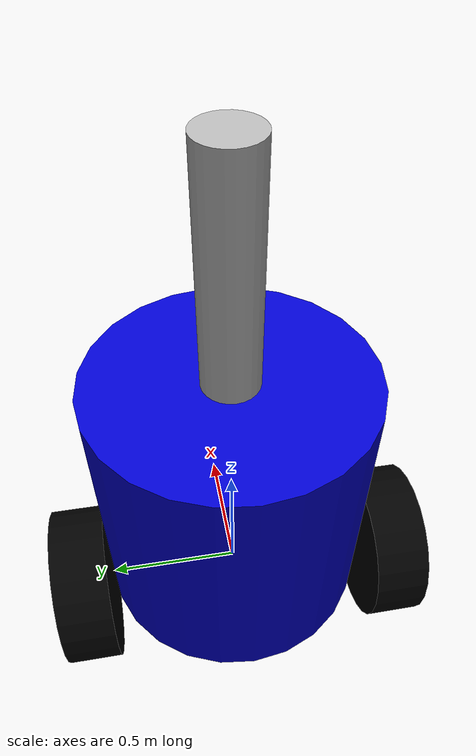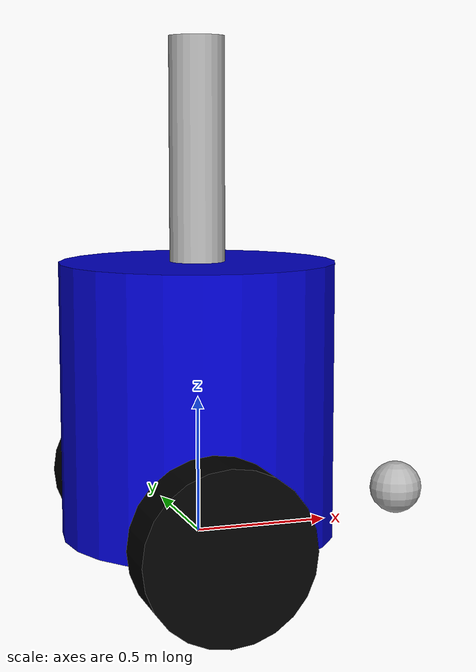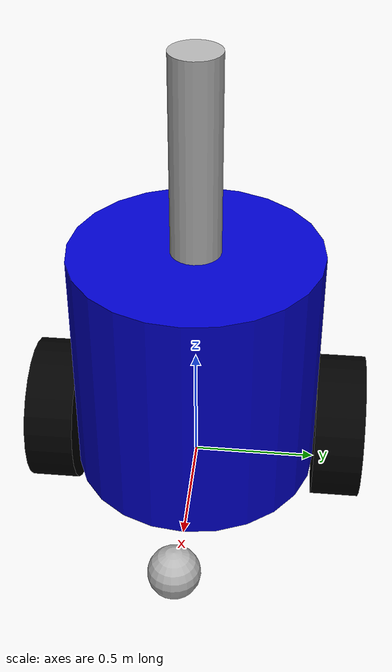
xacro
<?xml version="1.0"?>
<robot name="diff_drive_robot" xmlns:xacro="http://www.ros.org/wiki/xacro">

  <xacro:include filename="$(find diff_drive_description)/urdf/gazebo.urdf.xacro" />

  <!-- Constants -->
  <xacro:property name="M_PI" value="3.1415926535897931" />

  <!-- Robot Dimensions (соответствуют оригиналу из ex01) -->
  <xacro:property name="base_radius" value="0.5" />
  <xacro:property name="base_height" value="1.0" />
  <xacro:property name="base_mass" value="50.0" />

  <xacro:property name="wheel_radius" value="0.3" />
  <xacro:property name="wheel_length" value="0.2" />
  <xacro:property name="wheel_mass" value="5.0" />
  <xacro:property name="wheel_y_offset" value="0.6" />
  <xacro:property name="wheel_z_offset" value="0.1" />

  <xacro:property name="caster_radius" value="0.1" />
  <xacro:property name="caster_mass" value="2.0" />
  <xacro:property name="caster_x_offset" value="0.8" />
  <xacro:property name="caster_z_offset" value="0.1" />

  <xacro:property name="tower_height" value="0.8" />
  <xacro:property name="tower_radius" value="0.1" />
  <xacro:property name="tower_mass" value="3.0" />

  <!-- Colors -->
  <xacro:property name="blue_color" value="0.0 0.0 0.8 1.0" />
  <xacro:property name="black_color" value="0.0 0.0 0.0 1.0" />
  <xacro:property name="gray_color" value="0.7 0.7 0.7 1.0" />

  <!-- Materials -->
  <material name="blue">
    <color rgba="${blue_color}" />
  </material>
  <material name="black">
    <color rgba="${black_color}" />
  </material>
  <material name="gray">
    <color rgba="${gray_color}" />
  </material>

  <!-- Macro for creating a cylinder link -->
  <xacro:macro name="cylinder_link" params="name radius length mass color xyz:='0 0 0' rpy:='0 0 0'">
    <link name="${name}">
      <visual>
        <geometry>
          <cylinder length="${length}" radius="${radius}" />
        </geometry>
        <material name="${color}" />
        <origin xyz="${xyz}" rpy="${rpy}" />
      </visual>
      <collision>
        <geometry>
          <cylinder length="${length}" radius="${radius}" />
        </geometry>
        <origin xyz="${xyz}" rpy="${rpy}" />
      </collision>
      <inertial>
        <mass value="${mass}" />
        <inertia ixx="${mass * (3*radius*radius + length*length) / 12}"
                 ixy="0.0"
                 ixz="0.0"
                 iyy="${mass * (3*radius*radius + length*length) / 12}"
                 iyz="0.0"
                 izz="${mass * radius*radius / 2}" />
      </inertial>
    </link>
  </xacro:macro>

  <!-- Macro for creating a sphere link -->
  <xacro:macro name="sphere_link" params="name radius mass color">
    <link name="${name}">
      <visual>
        <geometry>
          <sphere radius="${radius}" />
        </geometry>
        <material name="${color}" />
      </visual>
      <collision>
        <geometry>
          <sphere radius="${radius}" />
        </geometry>
      </collision>
      <inertial>
        <mass value="${mass}" />
        <inertia ixx="${2 * mass * radius * radius / 5}"
                 ixy="0.0"
                 ixz="0.0"
                 iyy="${2 * mass * radius * radius / 5}"
                 iyz="0.0"
                 izz="${2 * mass * radius * radius / 5}" />
      </inertial>
    </link>
  </xacro:macro>

  <!-- Macro for creating a wheel joint -->
  <xacro:macro name="wheel_joint" params="name parent child xyz">
    <joint name="${name}" type="continuous">
      <parent link="${parent}" />
      <child link="${child}" />
      <origin xyz="${xyz}" rpy="0 0 0" />
      <axis xyz="0 1 0" />
      <dynamics damping="0.1" friction="0.5" />
    </joint>
  </xacro:macro>

  <!-- Macro for creating a fixed joint -->
  <xacro:macro name="fixed_joint" params="name parent child xyz">
    <joint name="${name}" type="fixed">
      <parent link="${parent}" />
      <child link="${child}" />
      <origin xyz="${xyz}" rpy="0 0 0" />
    </joint>
  </xacro:macro>

  <!-- Base Link (цилиндр как в оригинале) -->
  <xacro:cylinder_link name="base_link"
                       radius="${base_radius}"
                       length="${base_height}"
                       mass="${base_mass}"
                       color="blue"
                       xyz="0 0 ${base_height/2}" />

  <!-- Left Wheel -->
  <xacro:cylinder_link name="left_wheel"
                       radius="${wheel_radius}"
                       length="${wheel_length}"
                       mass="${wheel_mass}"
                       color="black"
                       rpy="${M_PI/2} 0 0" />

  <!-- Right Wheel -->
  <xacro:cylinder_link name="right_wheel"
                       radius="${wheel_radius}"
                       length="${wheel_length}"
                       mass="${wheel_mass}"
                       color="black"
                       rpy="${M_PI/2} 0 0" />

  <!-- Caster Wheel -->
  <xacro:sphere_link name="caster_wheel"
                     radius="${caster_radius}"
                     mass="${caster_mass}"
                     color="gray" />

  <!-- Sensor Tower -->
  <xacro:cylinder_link name="sensor_tower"
                       radius="${tower_radius}"
                       length="${tower_height}"
                       mass="${tower_mass}"
                       color="gray"
                       xyz="0 0 ${tower_height/2}" />

  <!-- Joints -->

  <!-- Left Wheel Joint (позиции как в оригинале) -->
  <xacro:wheel_joint name="left_wheel_joint"
                     parent="base_link"
                     child="left_wheel"
                     xyz="-0.1 ${wheel_y_offset} ${wheel_z_offset}" />

  <!-- Right Wheel Joint (позиции как в оригинале) -->
  <xacro:wheel_joint name="right_wheel_joint"
                     parent="base_link"
                     child="right_wheel"
                     xyz="-0.1 -${wheel_y_offset} ${wheel_z_offset}" />

  <!-- Caster Wheel Joint (позиции как в оригинале) -->
  <xacro:fixed_joint name="caster_wheel_joint"
                     parent="base_link"
                     child="caster_wheel"
                     xyz="${caster_x_offset} 0 ${caster_z_offset}" />

  <!-- Sensor Tower Joint (позиции как в оригинале) -->
  <xacro:fixed_joint name="sensor_tower_joint"
                     parent="base_link"
                     child="sensor_tower"
                     xyz="0 0 ${base_height}" />

  <!-- Gazebo materials -->
  <gazebo reference="base_link">
    <material>Gazebo/Blue</material>
  </gazebo>
  <gazebo reference="left_wheel">
    <material>Gazebo/Black</material>
  </gazebo>
  <gazebo reference="right_wheel">
    <material>Gazebo/Black</material>
  </gazebo>
  <gazebo reference="caster_wheel">
    <material>Gazebo/Gray</material>
    <mu1 value="0.001"/>
    <mu2 value="0.001"/>
  </gazebo>
  <gazebo reference="sensor_tower">
    <material>Gazebo/Gray</material>
  </gazebo>

</robot>
